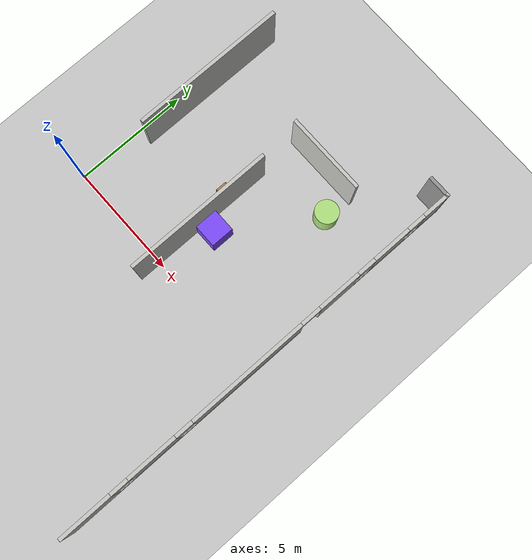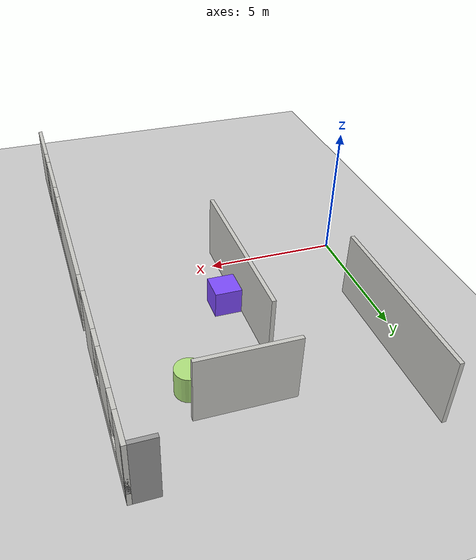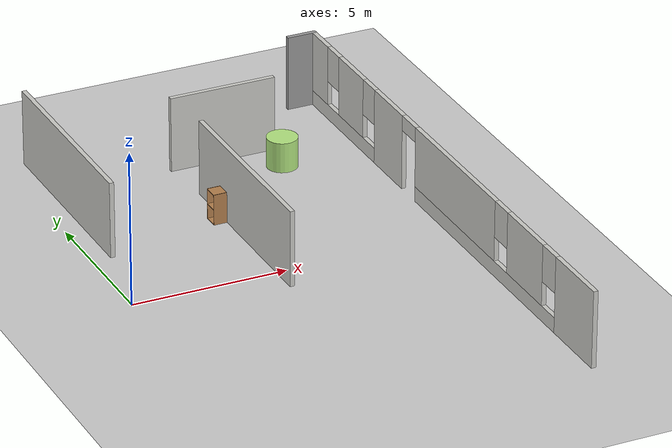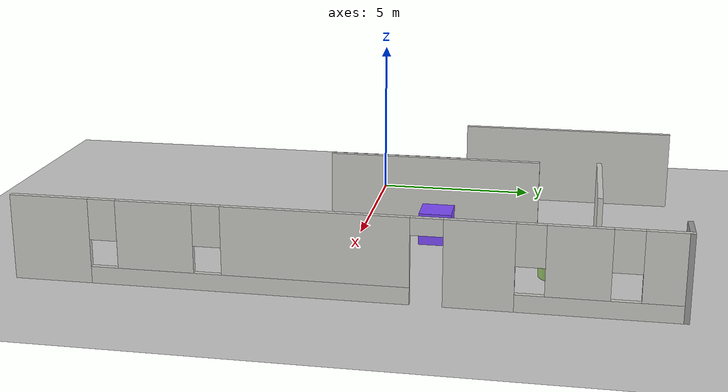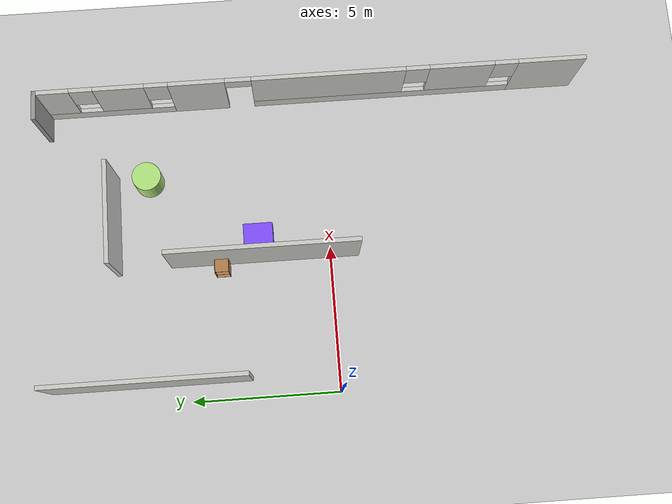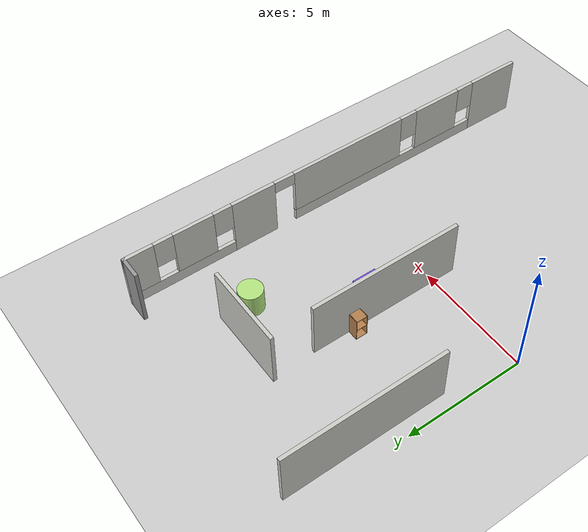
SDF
<sdf version="1.7">
 <world name="default">
  <model name="ground_plane">
   <static>1</static>
   <link name="link">
    <collision name="collision">
     <geometry><plane><normal>0 0 1</normal><size>100 100</size></plane></geometry>
     <surface><friction><ode><mu>100</mu><mu2>50</mu2></ode></friction></surface>
    </collision>
    <visual name="visual">
     <cast_shadows>0</cast_shadows>
     <geometry><plane><normal>0 0 1</normal><size>100 100</size></plane></geometry>
     <material>
      <script><uri>file://media/materials/scripts/gazebo.material</uri><name>Gazebo/Grey</name></script>
     </material>
    </visual>
   </link>
  </model>
  <model name="cabinet">
   <static>1</static>
   <link name="cabinet_bottom_plate">
    <inertial>
     <pose>0 0 -1 0 -0 0</pose>
     <inertia><ixx>2.05</ixx><ixy>0</ixy><ixz>0</ixz><iyy>2.05</iyy><iyz>0</iyz><izz>2.05</izz></inertia>
     <mass>25</mass>
    </inertial>
    <collision name="cabinet_bottom_plate_geom">
     <pose>0 0 0.01 0 -0 0</pose>
     <geometry><box><size>0.45 0.45 0.02</size></box></geometry>
    </collision>
    <visual name="cabinet_bottom_plate_geom_visual">
     <pose>0 0 0.01 0 -0 0</pose>
     <geometry><box><size>0.45 0.45 0.02</size></box></geometry>
     <material>
      <script><uri>file://media/materials/scripts/gazebo.material</uri><name>Gazebo/Wood</name></script>
     </material>
    </visual>
    <collision name="cabinet_bottom_plate_geom_cabinet_back_plate">
     <pose>0.235 0 0.51 0 -0 0</pose>
     <geometry><box><size>0.02 0.45 1.02</size></box></geometry>
    </collision>
    <visual name="cabinet_bottom_plate_geom_cabinet_back_plate_visual">
     <pose>0.235 0 0.51 0 -0 0</pose>
     <geometry><box><size>0.02 0.45 1.02</size></box></geometry>
     <material>
      <script><uri>file://media/materials/scripts/gazebo.material</uri><name>Gazebo/Wood</name></script>
     </material>
    </visual>
    <collision name="cabinet_bottom_plate_geom_cabinet_left_plate">
     <pose>0 0.235 0.51 0 -0 0</pose>
     <geometry><box><size>0.45 0.02 1.02</size></box></geometry>
    </collision>
    <visual name="cabinet_bottom_plate_geom_cabinet_left_plate_visual">
     <pose>0 0.235 0.51 0 -0 0</pose>
     <geometry><box><size>0.45 0.02 1.02</size></box></geometry>
     <material>
      <script><uri>file://media/materials/scripts/gazebo.material</uri><name>Gazebo/Wood</name></script>
     </material>
    </visual>
    <collision name="cabinet_bottom_plate_geom_cabinet_middle_plate">
     <pose>0 0 0.51 0 -0 0</pose>
     <geometry><box><size>0.45 0.45 0.02</size></box></geometry>
    </collision>
    <visual name="cabinet_bottom_plate_geom_cabinet_middle_plate_visual">
     <pose>0 0 0.51 0 -0 0</pose>
     <geometry><box><size>0.45 0.45 0.02</size></box></geometry>
     <material>
      <script><uri>file://media/materials/scripts/gazebo.material</uri><name>Gazebo/Wood</name></script>
     </material>
    </visual>
    <collision name="cabinet_bottom_plate_geom_cabinet_right_plate">
     <pose>0 -0.235 0.51 0 -0 0</pose>
     <geometry><box><size>0.45 0.02 1.02</size></box></geometry>
    </collision>
    <visual name="cabinet_bottom_plate_geom_cabinet_right_plate_visual">
     <pose>0 -0.235 0.51 0 -0 0</pose>
     <geometry><box><size>0.45 0.02 1.02</size></box></geometry>
     <material>
      <script><uri>file://media/materials/scripts/gazebo.material</uri><name>Gazebo/Wood</name></script>
     </material>
    </visual>
    <collision name="cabinet_bottom_plate_geom_cabinet_top_plate">
     <pose>0 0 1.01 0 -0 0</pose>
     <geometry><box><size>0.45 0.45 0.02</size></box></geometry>
    </collision>
    <visual name="cabinet_bottom_plate_geom_cabinet_top_plate_visual">
     <pose>0 0 1.01 0 -0 0</pose>
     <geometry><box><size>0.45 0.45 0.02</size></box></geometry>
     <material>
      <script><uri>file://media/materials/scripts/gazebo.material</uri><name>Gazebo/Wood</name></script>
     </material>
    </visual>
   </link>
   <pose>4.44424 3.74258 0 0 -0 0</pose>
  </model>
  <model name="unit_cylinder_33">
   <link name="link">
    <inertial>
     <mass>1</mass>
     <inertia><ixx>0.145833</ixx><ixy>0</ixy><ixz>0</ixz><iyy>0.145833</iyy><iyz>0</iyz><izz>0.125</izz></inertia>
    </inertial>
    <visual name="visual">
     <geometry><cylinder><radius>0.5</radius><length>1</length></cylinder></geometry>
     <material>
      <script><name>Gazebo/Grey</name><uri>file://media/materials/scripts/gazebo.material</uri></script>
      <shader type="pixel"><normal_map>__default__</normal_map></shader>
      <ambient>0.7 0.9 0.5 0</ambient>
      <diffuse>0.7 0.7 0.7 1</diffuse>
      <specular>0.01 0.01 0.01 1</specular>
      <emissive>0 0 0 1</emissive>
     </material>
    </visual>
    <collision name="collision">
     <geometry><cylinder><radius>0.5</radius><length>1</length></cylinder></geometry>
     <surface>
      <friction>
       <ode><mu>1</mu><mu2>1</mu2><fdir1>0 0 0</fdir1><slip1>0</slip1><slip2>0</slip2></ode>
       <torsional>
        <coefficient>1</coefficient>
        <patch_radius>0</patch_radius>
        <surface_radius>0</surface_radius>
        <use_patch_radius>1</use_patch_radius>
        <ode><slip>0</slip></ode>
       </torsional>
      </friction>
      <bounce><restitution_coefficient>0</restitution_coefficient><threshold>1e+06</threshold></bounce>
      <contact>
       <collide_without_contact>0</collide_without_contact>
       <collide_without_contact_bitmask>1</collide_without_contact_bitmask>
       <collide_bitmask>1</collide_bitmask>
       <ode>
        <soft_cfm>0</soft_cfm>
        <soft_erp>0.2</soft_erp>
        <kp>1e+13</kp>
        <kd>1</kd>
        <max_vel>0.01</max_vel>
        <min_depth>0</min_depth>
       </ode>
       <bullet>
        <split_impulse>1</split_impulse>
        <split_impulse_penetration_threshold>-0.01</split_impulse_penetration_threshold>
        <soft_cfm>0</soft_cfm>
        <soft_erp>0.2</soft_erp>
        <kp>1e+13</kp>
        <kd>1</kd>
       </bullet>
      </contact>
     </surface>
    </collision>
   </link>
   <static>0</static>
   <pose>7.74534 6.17381 0.499998 3e-06 1e-06 -0</pose>
  </model>
  <model name="unit_box12_0">
   <link name="link">
    <inertial>
     <mass>1</mass>
     <inertia>
      <ixx>0.166667</ixx>
      <ixy>0</ixy>
      <ixz>0</ixz>
      <iyy>0.166667</iyy>
      <iyz>0</iyz>
      <izz>0.166667</izz>
     </inertia>
    </inertial>
    <visual name="visual">
     <geometry><box><size>1 1 1</size></box></geometry>
     <material>
      <script><name>Gazebo/Grey</name><uri>file://media/materials/scripts/gazebo.material</uri></script>
      <shader type="pixel"><normal_map>__default__</normal_map></shader>
      <ambient>0.5 0.3 1 0</ambient>
      <diffuse>0.7 0.7 0.7 1</diffuse>
      <specular>0.01 0.01 0.01 1</specular>
      <emissive>0 0 0 1</emissive>
     </material>
    </visual>
    <collision name="collision">
     <geometry><box><size>1 1 1</size></box></geometry>
     <surface>
      <friction>
       <ode><mu>1</mu><mu2>1</mu2><fdir1>0 0 0</fdir1><slip1>0</slip1><slip2>0</slip2></ode>
       <torsional>
        <coefficient>1</coefficient>
        <patch_radius>0</patch_radius>
        <surface_radius>0</surface_radius>
        <use_patch_radius>1</use_patch_radius>
        <ode><slip>0</slip></ode>
       </torsional>
      </friction>
      <bounce><restitution_coefficient>0</restitution_coefficient><threshold>1e+06</threshold></bounce>
      <contact>
       <collide_without_contact>0</collide_without_contact>
       <collide_without_contact_bitmask>1</collide_without_contact_bitmask>
       <collide_bitmask>1</collide_bitmask>
       <ode>
        <soft_cfm>0</soft_cfm>
        <soft_erp>0.2</soft_erp>
        <kp>1e+13</kp>
        <kd>1</kd>
        <max_vel>0.01</max_vel>
        <min_depth>0</min_depth>
       </ode>
       <bullet>
        <split_impulse>1</split_impulse>
        <split_impulse_penetration_threshold>-0.01</split_impulse_penetration_threshold>
        <soft_cfm>0</soft_cfm>
        <soft_erp>0.2</soft_erp>
        <kp>1e+13</kp>
        <kd>1</kd>
       </bullet>
      </contact>
     </surface>
    </collision>
   </link>
   <static>0</static>
   <pose>5.32386 2.44658 0.5 0 -0 5e-06</pose>
  </model>
  <model name="training_area">
   <link name="Wall_28">
    <pose>0.758252 5.97196 0 0 0 -1.5708</pose>
    <inertial>
     <mass>1</mass>
     <inertia><ixx>1</ixx><ixy>0</ixy><ixz>0</ixz><iyy>1</iyy><iyz>0</iyz><izz>1</izz></inertia>
    </inertial>
    <visual name="Wall_28_Visual">
     <pose>0 0 1.25 0 -0 0</pose>
     <geometry><box><size>6.75 0.15 2.5</size></box></geometry>
     <material>
      <script><uri>file://media/materials/scripts/gazebo.material</uri><name>Gazebo/CeilingTiled</name></script>
      <ambient>0.135 0.396 0.9 1</ambient>
      <shader type="pixel"><normal_map>__default__</normal_map></shader>
      <diffuse>1 1 1 1</diffuse>
      <specular>0 0 0 1</specular>
      <emissive>0 0 0 1</emissive>
     </material>
     <meta><layer>0</layer></meta>
    </visual>
    <collision name="Wall_28_Collision">
     <pose>0 0 1.25 0 -0 0</pose>
     <geometry><box><size>6.75 0.15 2.5</size></box></geometry>
     <surface>
      <friction>
       <ode><mu>1</mu><mu2>1</mu2><fdir1>0 0 0</fdir1><slip1>0</slip1><slip2>0</slip2></ode>
       <torsional>
        <coefficient>1</coefficient>
        <patch_radius>0</patch_radius>
        <surface_radius>0</surface_radius>
        <use_patch_radius>1</use_patch_radius>
        <ode><slip>0</slip></ode>
       </torsional>
      </friction>
      <bounce><restitution_coefficient>0</restitution_coefficient><threshold>1e+06</threshold></bounce>
      <contact>
       <collide_without_contact>0</collide_without_contact>
       <collide_without_contact_bitmask>1</collide_without_contact_bitmask>
       <collide_bitmask>1</collide_bitmask>
       <ode>
        <soft_cfm>0</soft_cfm>
        <soft_erp>0.2</soft_erp>
        <kp>1e+13</kp>
        <kd>1</kd>
        <max_vel>0.01</max_vel>
        <min_depth>0</min_depth>
       </ode>
       <bullet>
        <split_impulse>1</split_impulse>
        <split_impulse_penetration_threshold>-0.01</split_impulse_penetration_threshold>
        <soft_cfm>0</soft_cfm>
        <soft_erp>0.2</soft_erp>
        <kp>1e+13</kp>
        <kd>1</kd>
       </bullet>
      </contact>
     </surface>
    </collision>
   </link>
   <link name="Wall_30">
    <pose>6.33904 6.99359 0 0 -0 0</pose>
    <visual name="Wall_30_Visual">
     <pose>0 0 1.25 0 -0 0</pose>
     <geometry><box><size>3.5 0.15 2.5</size></box></geometry>
     <material>
      <script><uri>file://media/materials/scripts/gazebo.material</uri><name>Gazebo/CeilingTiled</name></script>
      <ambient>0.435294 0.796078 0.67451 1</ambient>
      <shader type="pixel"/>
     </material>
     <meta><layer>0</layer></meta>
    </visual>
    <collision name="Wall_30_Collision">
     <pose>0 0 1.25 0 -0 0</pose>
     <geometry><box><size>3.5 0.15 2.5</size></box></geometry>
     <surface>
      <friction>
       <ode><mu>1</mu><mu2>1</mu2><fdir1>0 0 0</fdir1><slip1>0</slip1><slip2>0</slip2></ode>
       <torsional>
        <coefficient>1</coefficient>
        <patch_radius>0</patch_radius>
        <surface_radius>0</surface_radius>
        <use_patch_radius>1</use_patch_radius>
        <ode><slip>0</slip></ode>
       </torsional>
      </friction>
      <bounce><restitution_coefficient>0</restitution_coefficient><threshold>1e+06</threshold></bounce>
      <contact>
       <collide_without_contact>0</collide_without_contact>
       <collide_without_contact_bitmask>1</collide_without_contact_bitmask>
       <collide_bitmask>1</collide_bitmask>
       <ode>
        <soft_cfm>0</soft_cfm>
        <soft_erp>0.2</soft_erp>
        <kp>1e+13</kp>
        <kd>1</kd>
        <max_vel>0.01</max_vel>
        <min_depth>0</min_depth>
       </ode>
       <bullet>
        <split_impulse>1</split_impulse>
        <split_impulse_penetration_threshold>-0.01</split_impulse_penetration_threshold>
        <soft_cfm>0</soft_cfm>
        <soft_erp>0.2</soft_erp>
        <kp>1e+13</kp>
        <kd>1</kd>
       </bullet>
      </contact>
     </surface>
    </collision>
   </link>
   <link name="Wall_32">
    <pose>4.82678 1.94706 0 0 0 -1.5708</pose>
    <inertial>
     <mass>1</mass>
     <inertia><ixx>1</ixx><ixy>0</ixy><ixz>0</ixz><iyy>1</iyy><iyz>0</iyz><izz>1</izz></inertia>
    </inertial>
    <visual name="Wall_32_Visual">
     <pose>0 0 1.25 0 -0 0</pose>
     <geometry><box><size>6.5 0.15 2.5</size></box></geometry>
     <material>
      <script><uri>file://media/materials/scripts/gazebo.material</uri><name>Gazebo/CeilingTiled</name></script>
      <ambient>0.835 0.396 0.375 1</ambient>
      <shader type="pixel"><normal_map>__default__</normal_map></shader>
      <diffuse>1 1 1 1</diffuse>
      <specular>0 0 0 1</specular>
      <emissive>0 0 0 1</emissive>
     </material>
     <meta><layer>0</layer></meta>
    </visual>
    <collision name="Wall_32_Collision">
     <pose>0 0 1.25 0 -0 0</pose>
     <geometry><box><size>6.5 0.15 2.5</size></box></geometry>
     <surface>
      <friction>
       <ode><mu>1</mu><mu2>1</mu2><fdir1>0 0 0</fdir1><slip1>0</slip1><slip2>0</slip2></ode>
       <torsional>
        <coefficient>1</coefficient>
        <patch_radius>0</patch_radius>
        <surface_radius>0</surface_radius>
        <use_patch_radius>1</use_patch_radius>
        <ode><slip>0</slip></ode>
       </torsional>
      </friction>
      <bounce><restitution_coefficient>0</restitution_coefficient><threshold>1e+06</threshold></bounce>
      <contact>
       <collide_without_contact>0</collide_without_contact>
       <collide_without_contact_bitmask>1</collide_without_contact_bitmask>
       <collide_bitmask>1</collide_bitmask>
       <ode>
        <soft_cfm>0</soft_cfm>
        <soft_erp>0.2</soft_erp>
        <kp>1e+13</kp>
        <kd>1</kd>
        <max_vel>0.01</max_vel>
        <min_depth>0</min_depth>
       </ode>
       <bullet>
        <split_impulse>1</split_impulse>
        <split_impulse_penetration_threshold>-0.01</split_impulse_penetration_threshold>
        <soft_cfm>0</soft_cfm>
        <soft_erp>0.2</soft_erp>
        <kp>1e+13</kp>
        <kd>1</kd>
       </bullet>
      </contact>
     </surface>
    </collision>
   </link>
   <link name="Wall_7">
    <pose>10.555 0 0 0 -0 1.5708</pose>
    <inertial>
     <mass>1</mass>
     <inertia><ixx>1</ixx><ixy>0</ixy><ixz>0</ixz><iyy>1</iyy><iyz>0</iyz><izz>1</izz></inertia>
    </inertial>
    <visual name="Wall_7_Visual_2">
     <pose>-2.54492 0 0.25 0 -0 0</pose>
     <geometry><box><size>9.06351 0.15 0.5</size></box></geometry>
     <material>
      <script><uri>file://media/materials/scripts/gazebo.material</uri><name>Gazebo/CeilingTiled</name></script>
      <ambient>0.1 0.9 0.906 1</ambient>
      <shader type="pixel"><normal_map>__default__</normal_map></shader>
      <diffuse>1 1 1 1</diffuse>
      <specular>0 0 0 1</specular>
      <emissive>0 0 0 1</emissive>
     </material>
     <meta><layer>0</layer></meta>
    </visual>
    <visual name="Wall_7_Visual_12">
     <pose>7.72592 0 1.9 0 -0 0</pose>
     <geometry><box><size>0.8 0.15 1.2</size></box></geometry>
     <material>
      <script><uri>file://media/materials/scripts/gazebo.material</uri><name>Gazebo/CeilingTiled</name></script>
      <ambient>0.4 1 0.106 1</ambient>
      <shader type="pixel"><normal_map>__default__</normal_map></shader>
      <diffuse>1 1 1 1</diffuse>
      <specular>0 0 0 1</specular>
      <emissive>0 0 0 1</emissive>
     </material>
     <meta><layer>0</layer></meta>
    </visual>
    <visual name="Wall_7_Visual_11">
     <pose>-3.66596 0 1.9 0 -0 0</pose>
     <geometry><box><size>0.8 0.15 1.2</size></box></geometry>
     <material>
      <script><uri>file://media/materials/scripts/gazebo.material</uri><name>Gazebo/CeilingTiled</name></script>
      <ambient>0.5 0.465 0.106 1</ambient>
      <shader type="pixel"><normal_map>__default__</normal_map></shader>
      <diffuse>1 1 1 1</diffuse>
      <specular>0 0 0 1</specular>
      <emissive>0 0 0 1</emissive>
     </material>
     <meta><layer>0</layer></meta>
    </visual>
    <visual name="Wall_7_Visual_6">
     <pose>-0.639567 0 1.5 0 -0 0</pose>
     <geometry><box><size>5.2528 0.15 2</size></box></geometry>
     <material>
      <script><uri>file://media/materials/scripts/gazebo.material</uri><name>Gazebo/CeilingTiled</name></script>
      <ambient>0.2 0.765 0.206 1</ambient>
      <shader type="pixel"><normal_map>__default__</normal_map></shader>
      <diffuse>1 1 1 1</diffuse>
      <specular>0 0 0 1</specular>
      <emissive>0 0 0 1</emissive>
     </material>
     <meta><layer>0</layer></meta>
    </visual>
    <visual name="Wall_7_Visual_1">
     <pose>3.84513 0 1.25 0 -0 0</pose>
     <geometry><box><size>1.9166 0.15 2.5</size></box></geometry>
     <material>
      <script><uri>file://media/materials/scripts/gazebo.material</uri><name>Gazebo/CeilingTiled</name></script>
      <ambient>0.9 0.9 0.106 1</ambient>
      <shader type="pixel"><normal_map>__default__</normal_map></shader>
      <diffuse>1 1 1 1</diffuse>
      <specular>0 0 0 1</specular>
      <emissive>0 0 0 1</emissive>
     </material>
     <meta><layer>0</layer></meta>
    </visual>
    <visual name="Wall_7_Visual_14">
     <pose>2.43683 0 2.25 0 -0 0</pose>
     <geometry><box><size>0.9 0.15 0.5</size></box></geometry>
     <material>
      <script><uri>file://media/materials/scripts/gazebo.material</uri><name>Gazebo/CeilingTiled</name></script>
      <ambient>0.9 0.465 0.806 1</ambient>
      <shader type="pixel"><normal_map>__default__</normal_map></shader>
      <diffuse>1 1 1 1</diffuse>
      <specular>0 0 0 1</specular>
      <emissive>0 0 0 1</emissive>
     </material>
     <meta><layer>0</layer></meta>
    </visual>
    <visual name="Wall_7_Visual_8">
     <pose>8.75046 0 1.5 0 -0 0</pose>
     <geometry><box><size>1.24908 0.15 2</size></box></geometry>
     <material>
      <script><uri>file://media/materials/scripts/gazebo.material</uri><name>Gazebo/CeilingTiled</name></script>
      <ambient>0.6 1 0.606 1</ambient>
      <shader type="pixel"><normal_map>__default__</normal_map></shader>
      <diffuse>1 1 1 1</diffuse>
      <specular>0 0 0 1</specular>
      <emissive>0 0 0 1</emissive>
     </material>
     <meta><layer>0</layer></meta>
    </visual>
    <visual name="Wall_7_Visual_13">
     <pose>2.43683 0 2.25 0 -0 0</pose>
     <geometry><box><size>0.9 0.15 0.5</size></box></geometry>
     <material>
      <script><uri>file://media/materials/scripts/gazebo.material</uri><name>Gazebo/CeilingTiled</name></script>
      <ambient>0.7 0.965 0.706 1</ambient>
      <shader type="pixel"><normal_map>__default__</normal_map></shader>
      <diffuse>1 1 1 1</diffuse>
      <specular>0 0 0 1</specular>
      <emissive>0 0 0 1</emissive>
     </material>
     <meta><layer>0</layer></meta>
    </visual>
    <visual name="Wall_7_Visual_10">
     <pose>5.20343 0 1.9 0 -0 0</pose>
     <geometry><box><size>0.8 0.15 1.2</size></box></geometry>
     <material>
      <script><uri>file://media/materials/scripts/gazebo.material</uri><name>Gazebo/CeilingTiled</name></script>
      <ambient>0.6 0.265 0.806 1</ambient>
      <shader type="pixel"><normal_map>__default__</normal_map></shader>
      <diffuse>1 1 1 1</diffuse>
      <specular>0 0 0 1</specular>
      <emissive>0 0 0 1</emissive>
     </material>
     <meta><layer>0</layer></meta>
    </visual>
    <visual name="Wall_7_Visual_4">
     <pose>-5.17132 0 1.5 0 -0 0</pose>
     <geometry><box><size>2.21071 0.15 2</size></box></geometry>
     <material>
      <script><uri>file://media/materials/scripts/gazebo.material</uri><name>Gazebo/CeilingTiled</name></script>
      <ambient>0.5 0.765 0.706 1</ambient>
      <shader type="pixel"><normal_map>__default__</normal_map></shader>
      <diffuse>1 1 1 1</diffuse>
      <specular>0 0 0 1</specular>
      <emissive>0 0 0 1</emissive>
     </material>
     <meta><layer>0</layer></meta>
    </visual>
    <visual name="Wall_7_Visual_9">
     <pose>-6.67668 0 1.9 0 -0 0</pose>
     <geometry><box><size>0.8 0.15 1.2</size></box></geometry>
     <material>
      <script><uri>file://media/materials/scripts/gazebo.material</uri><name>Gazebo/CeilingTiled</name></script>
      <ambient>0.6 0.965 0.206 1</ambient>
      <shader type="pixel"><normal_map>__default__</normal_map></shader>
      <diffuse>1 1 1 1</diffuse>
      <specular>0 0 0 1</specular>
      <emissive>0 0 0 1</emissive>
     </material>
     <meta><layer>0</layer></meta>
    </visual>
    <visual name="Wall_7_Visual_7">
     <pose>6.46468 0 1.5 0 -0 0</pose>
     <geometry><box><size>1.72249 0.15 2</size></box></geometry>
     <material>
      <script><uri>file://media/materials/scripts/gazebo.material</uri><name>Gazebo/CeilingTiled</name></script>
      <ambient>0.8 0.3 0.306 1</ambient>
      <shader type="pixel"><normal_map>__default__</normal_map></shader>
      <diffuse>1 1 1 1</diffuse>
      <specular>0 0 0 1</specular>
      <emissive>0 0 0 1</emissive>
     </material>
     <meta><layer>0</layer></meta>
    </visual>
    <visual name="Wall_7_Visual_0">
     <pose>-8.22584 0 1.25 0 -0 0</pose>
     <geometry><box><size>2.29832 0.15 2.5</size></box></geometry>
     <material>
      <script><uri>file://media/materials/scripts/gazebo.material</uri><name>Gazebo/CeilingTiled</name></script>
      <ambient>0.9 0.1 0.9 1</ambient>
      <shader type="pixel"><normal_map>__default__</normal_map></shader>
      <diffuse>1 1 1 1</diffuse>
      <specular>0 0 0 1</specular>
      <emissive>0 0 0 1</emissive>
     </material>
     <meta><layer>0</layer></meta>
    </visual>
    <visual name="Wall_7_Visual_3">
     <pose>7.08922 0 0.25 0 -0 0</pose>
     <geometry><box><size>4.57157 0.15 0.5</size></box></geometry>
     <material>
      <script><uri>file://media/materials/scripts/gazebo.material</uri><name>Gazebo/CeilingTiled</name></script>
      <ambient>0.9 0.265 0.906 1</ambient>
      <shader type="pixel"><normal_map>__default__</normal_map></shader>
      <diffuse>1 1 1 1</diffuse>
      <specular>0 0 0 1</specular>
      <emissive>0 0 0 1</emissive>
     </material>
     <meta><layer>0</layer></meta>
    </visual>
    <visual name="Wall_7_Visual_5">
     <pose>-0.639567 0 1.5 0 -0 0</pose>
     <geometry><box><size>5.2528 0.15 2</size></box></geometry>
     <material>
      <script><uri>file://media/materials/scripts/gazebo.material</uri><name>Gazebo/CeilingTiled</name></script>
      <ambient>1 0.065 0.806 1</ambient>
      <shader type="pixel"><normal_map>__default__</normal_map></shader>
      <diffuse>1 1 1 1</diffuse>
      <specular>0 0 0 1</specular>
      <emissive>0 0 0 1</emissive>
     </material>
     <meta><layer>0</layer></meta>
    </visual>
    <collision name="Wall_7_Collision_6">
     <pose>-0.639567 0 1.5 0 -0 0</pose>
     <geometry><box><size>5.2528 0.15 2</size></box></geometry>
     <surface>
      <friction>
       <ode><mu>1</mu><mu2>1</mu2><fdir1>0 0 0</fdir1><slip1>0</slip1><slip2>0</slip2></ode>
       <torsional>
        <coefficient>1</coefficient>
        <patch_radius>0</patch_radius>
        <surface_radius>0</surface_radius>
        <use_patch_radius>1</use_patch_radius>
        <ode><slip>0</slip></ode>
       </torsional>
      </friction>
      <bounce><restitution_coefficient>0</restitution_coefficient><threshold>1e+06</threshold></bounce>
      <contact>
       <collide_without_contact>0</collide_without_contact>
       <collide_without_contact_bitmask>1</collide_without_contact_bitmask>
       <collide_bitmask>1</collide_bitmask>
       <ode>
        <soft_cfm>0</soft_cfm>
        <soft_erp>0.2</soft_erp>
        <kp>1e+13</kp>
        <kd>1</kd>
        <max_vel>0.01</max_vel>
        <min_depth>0</min_depth>
       </ode>
       <bullet>
        <split_impulse>1</split_impulse>
        <split_impulse_penetration_threshold>-0.01</split_impulse_penetration_threshold>
        <soft_cfm>0</soft_cfm>
        <soft_erp>0.2</soft_erp>
        <kp>1e+13</kp>
        <kd>1</kd>
       </bullet>
      </contact>
     </surface>
    </collision>
    <collision name="Wall_7_Collision_2">
     <pose>-2.54492 0 0.25 0 -0 0</pose>
     <geometry><box><size>9.06351 0.15 0.5</size></box></geometry>
     <surface>
      <friction>
       <ode><mu>1</mu><mu2>1</mu2><fdir1>0 0 0</fdir1><slip1>0</slip1><slip2>0</slip2></ode>
       <torsional>
        <coefficient>1</coefficient>
        <patch_radius>0</patch_radius>
        <surface_radius>0</surface_radius>
        <use_patch_radius>1</use_patch_radius>
        <ode><slip>0</slip></ode>
       </torsional>
      </friction>
      <bounce><restitution_coefficient>0</restitution_coefficient><threshold>1e+06</threshold></bounce>
      <contact>
       <collide_without_contact>0</collide_without_contact>
       <collide_without_contact_bitmask>1</collide_without_contact_bitmask>
       <collide_bitmask>1</collide_bitmask>
       <ode>
        <soft_cfm>0</soft_cfm>
        <soft_erp>0.2</soft_erp>
        <kp>1e+13</kp>
        <kd>1</kd>
        <max_vel>0.01</max_vel>
        <min_depth>0</min_depth>
       </ode>
       <bullet>
        <split_impulse>1</split_impulse>
        <split_impulse_penetration_threshold>-0.01</split_impulse_penetration_threshold>
        <soft_cfm>0</soft_cfm>
        <soft_erp>0.2</soft_erp>
        <kp>1e+13</kp>
        <kd>1</kd>
       </bullet>
      </contact>
     </surface>
    </collision>
    <collision name="Wall_7_Collision_7">
     <pose>6.46468 0 1.5 0 -0 0</pose>
     <geometry><box><size>1.72249 0.15 2</size></box></geometry>
     <surface>
      <friction>
       <ode><mu>1</mu><mu2>1</mu2><fdir1>0 0 0</fdir1><slip1>0</slip1><slip2>0</slip2></ode>
       <torsional>
        <coefficient>1</coefficient>
        <patch_radius>0</patch_radius>
        <surface_radius>0</surface_radius>
        <use_patch_radius>1</use_patch_radius>
        <ode><slip>0</slip></ode>
       </torsional>
      </friction>
      <bounce><restitution_coefficient>0</restitution_coefficient><threshold>1e+06</threshold></bounce>
      <contact>
       <collide_without_contact>0</collide_without_contact>
       <collide_without_contact_bitmask>1</collide_without_contact_bitmask>
       <collide_bitmask>1</collide_bitmask>
       <ode>
        <soft_cfm>0</soft_cfm>
        <soft_erp>0.2</soft_erp>
        <kp>1e+13</kp>
        <kd>1</kd>
        <max_vel>0.01</max_vel>
        <min_depth>0</min_depth>
       </ode>
       <bullet>
        <split_impulse>1</split_impulse>
        <split_impulse_penetration_threshold>-0.01</split_impulse_penetration_threshold>
        <soft_cfm>0</soft_cfm>
        <soft_erp>0.2</soft_erp>
        <kp>1e+13</kp>
        <kd>1</kd>
       </bullet>
      </contact>
     </surface>
    </collision>
    <collision name="Wall_7_Collision_3">
     <pose>7.08922 0 0.25 0 -0 0</pose>
     <geometry><box><size>4.57157 0.15 0.5</size></box></geometry>
     <surface>
      <friction>
       <ode><mu>1</mu><mu2>1</mu2><fdir1>0 0 0</fdir1><slip1>0</slip1><slip2>0</slip2></ode>
       <torsional>
        <coefficient>1</coefficient>
        <patch_radius>0</patch_radius>
        <surface_radius>0</surface_radius>
        <use_patch_radius>1</use_patch_radius>
        <ode><slip>0</slip></ode>
       </torsional>
      </friction>
      <bounce><restitution_coefficient>0</restitution_coefficient><threshold>1e+06</threshold></bounce>
      <contact>
       <collide_without_contact>0</collide_without_contact>
       <collide_without_contact_bitmask>1</collide_without_contact_bitmask>
       <collide_bitmask>1</collide_bitmask>
       <ode>
        <soft_cfm>0</soft_cfm>
        <soft_erp>0.2</soft_erp>
        <kp>1e+13</kp>
        <kd>1</kd>
        <max_vel>0.01</max_vel>
        <min_depth>0</min_depth>
       </ode>
       <bullet>
        <split_impulse>1</split_impulse>
        <split_impulse_penetration_threshold>-0.01</split_impulse_penetration_threshold>
        <soft_cfm>0</soft_cfm>
        <soft_erp>0.2</soft_erp>
        <kp>1e+13</kp>
        <kd>1</kd>
       </bullet>
      </contact>
     </surface>
    </collision>
    <collision name="Wall_7_Collision_5">
     <pose>-0.639567 0 1.5 0 -0 0</pose>
     <geometry><box><size>5.2528 0.15 2</size></box></geometry>
     <surface>
      <friction>
       <ode><mu>1</mu><mu2>1</mu2><fdir1>0 0 0</fdir1><slip1>0</slip1><slip2>0</slip2></ode>
       <torsional>
        <coefficient>1</coefficient>
        <patch_radius>0</patch_radius>
        <surface_radius>0</surface_radius>
        <use_patch_radius>1</use_patch_radius>
        <ode><slip>0</slip></ode>
       </torsional>
      </friction>
      <bounce><restitution_coefficient>0</restitution_coefficient><threshold>1e+06</threshold></bounce>
      <contact>
       <collide_without_contact>0</collide_without_contact>
       <collide_without_contact_bitmask>1</collide_without_contact_bitmask>
       <collide_bitmask>1</collide_bitmask>
       <ode>
        <soft_cfm>0</soft_cfm>
        <soft_erp>0.2</soft_erp>
        <kp>1e+13</kp>
        <kd>1</kd>
        <max_vel>0.01</max_vel>
        <min_depth>0</min_depth>
       </ode>
       <bullet>
        <split_impulse>1</split_impulse>
        <split_impulse_penetration_threshold>-0.01</split_impulse_penetration_threshold>
        <soft_cfm>0</soft_cfm>
        <soft_erp>0.2</soft_erp>
        <kp>1e+13</kp>
        <kd>1</kd>
       </bullet>
      </contact>
     </surface>
    </collision>
    <collision name="Wall_7_Collision_4">
     <pose>-5.17132 0 1.5 0 -0 0</pose>
     <geometry><box><size>2.21071 0.15 2</size></box></geometry>
     <surface>
      <friction>
       <ode><mu>1</mu><mu2>1</mu2><fdir1>0 0 0</fdir1><slip1>0</slip1><slip2>0</slip2></ode>
       <torsional>
        <coefficient>1</coefficient>
        <patch_radius>0</patch_radius>
        <surface_radius>0</surface_radius>
        <use_patch_radius>1</use_patch_radius>
        <ode><slip>0</slip></ode>
       </torsional>
      </friction>
      <bounce><restitution_coefficient>0</restitution_coefficient><threshold>1e+06</threshold></bounce>
      <contact>
       <collide_without_contact>0</collide_without_contact>
       <collide_without_contact_bitmask>1</collide_without_contact_bitmask>
       <collide_bitmask>1</collide_bitmask>
       <ode>
        <soft_cfm>0</soft_cfm>
        <soft_erp>0.2</soft_erp>
        <kp>1e+13</kp>
        <kd>1</kd>
        <max_vel>0.01</max_vel>
        <min_depth>0</min_depth>
       </ode>
       <bullet>
        <split_impulse>1</split_impulse>
        <split_impulse_penetration_threshold>-0.01</split_impulse_penetration_threshold>
        <soft_cfm>0</soft_cfm>
        <soft_erp>0.2</soft_erp>
        <kp>1e+13</kp>
        <kd>1</kd>
       </bullet>
      </contact>
     </surface>
    </collision>
    <collision name="Wall_7_Collision_12">
     <pose>7.72592 0 1.9 0 -0 0</pose>
     <geometry><box><size>0.8 0.15 1.2</size></box></geometry>
     <surface>
      <friction>
       <ode><mu>1</mu><mu2>1</mu2><fdir1>0 0 0</fdir1><slip1>0</slip1><slip2>0</slip2></ode>
       <torsional>
        <coefficient>1</coefficient>
        <patch_radius>0</patch_radius>
        <surface_radius>0</surface_radius>
        <use_patch_radius>1</use_patch_radius>
        <ode><slip>0</slip></ode>
       </torsional>
      </friction>
      <bounce><restitution_coefficient>0</restitution_coefficient><threshold>1e+06</threshold></bounce>
      <contact>
       <collide_without_contact>0</collide_without_contact>
       <collide_without_contact_bitmask>1</collide_without_contact_bitmask>
       <collide_bitmask>1</collide_bitmask>
       <ode>
        <soft_cfm>0</soft_cfm>
        <soft_erp>0.2</soft_erp>
        <kp>1e+13</kp>
        <kd>1</kd>
        <max_vel>0.01</max_vel>
        <min_depth>0</min_depth>
       </ode>
       <bullet>
        <split_impulse>1</split_impulse>
        <split_impulse_penetration_threshold>-0.01</split_impulse_penetration_threshold>
        <soft_cfm>0</soft_cfm>
        <soft_erp>0.2</soft_erp>
        <kp>1e+13</kp>
        <kd>1</kd>
       </bullet>
      </contact>
     </surface>
    </collision>
    <collision name="Wall_7_Collision_8">
     <pose>8.75046 0 1.5 0 -0 0</pose>
     <geometry><box><size>1.24908 0.15 2</size></box></geometry>
     <surface>
      <friction>
       <ode><mu>1</mu><mu2>1</mu2><fdir1>0 0 0</fdir1><slip1>0</slip1><slip2>0</slip2></ode>
       <torsional>
        <coefficient>1</coefficient>
        <patch_radius>0</patch_radius>
        <surface_radius>0</surface_radius>
        <use_patch_radius>1</use_patch_radius>
        <ode><slip>0</slip></ode>
       </torsional>
      </friction>
      <bounce><restitution_coefficient>0</restitution_coefficient><threshold>1e+06</threshold></bounce>
      <contact>
       <collide_without_contact>0</collide_without_contact>
       <collide_without_contact_bitmask>1</collide_without_contact_bitmask>
       <collide_bitmask>1</collide_bitmask>
       <ode>
        <soft_cfm>0</soft_cfm>
        <soft_erp>0.2</soft_erp>
        <kp>1e+13</kp>
        <kd>1</kd>
        <max_vel>0.01</max_vel>
        <min_depth>0</min_depth>
       </ode>
       <bullet>
        <split_impulse>1</split_impulse>
        <split_impulse_penetration_threshold>-0.01</split_impulse_penetration_threshold>
        <soft_cfm>0</soft_cfm>
        <soft_erp>0.2</soft_erp>
        <kp>1e+13</kp>
        <kd>1</kd>
       </bullet>
      </contact>
     </surface>
    </collision>
    <collision name="Wall_7_Collision_14">
     <pose>2.43683 0 2.25 0 -0 0</pose>
     <geometry><box><size>0.9 0.15 0.5</size></box></geometry>
     <surface>
      <friction>
       <ode><mu>1</mu><mu2>1</mu2><fdir1>0 0 0</fdir1><slip1>0</slip1><slip2>0</slip2></ode>
       <torsional>
        <coefficient>1</coefficient>
        <patch_radius>0</patch_radius>
        <surface_radius>0</surface_radius>
        <use_patch_radius>1</use_patch_radius>
        <ode><slip>0</slip></ode>
       </torsional>
      </friction>
      <bounce><restitution_coefficient>0</restitution_coefficient><threshold>1e+06</threshold></bounce>
      <contact>
       <collide_without_contact>0</collide_without_contact>
       <collide_without_contact_bitmask>1</collide_without_contact_bitmask>
       <collide_bitmask>1</collide_bitmask>
       <ode>
        <soft_cfm>0</soft_cfm>
        <soft_erp>0.2</soft_erp>
        <kp>1e+13</kp>
        <kd>1</kd>
        <max_vel>0.01</max_vel>
        <min_depth>0</min_depth>
       </ode>
       <bullet>
        <split_impulse>1</split_impulse>
        <split_impulse_penetration_threshold>-0.01</split_impulse_penetration_threshold>
        <soft_cfm>0</soft_cfm>
        <soft_erp>0.2</soft_erp>
        <kp>1e+13</kp>
        <kd>1</kd>
       </bullet>
      </contact>
     </surface>
    </collision>
    <collision name="Wall_7_Collision_9">
     <pose>-6.67668 0 1.9 0 -0 0</pose>
     <geometry><box><size>0.8 0.15 1.2</size></box></geometry>
     <surface>
      <friction>
       <ode><mu>1</mu><mu2>1</mu2><fdir1>0 0 0</fdir1><slip1>0</slip1><slip2>0</slip2></ode>
       <torsional>
        <coefficient>1</coefficient>
        <patch_radius>0</patch_radius>
        <surface_radius>0</surface_radius>
        <use_patch_radius>1</use_patch_radius>
        <ode><slip>0</slip></ode>
       </torsional>
      </friction>
      <bounce><restitution_coefficient>0</restitution_coefficient><threshold>1e+06</threshold></bounce>
      <contact>
       <collide_without_contact>0</collide_without_contact>
       <collide_without_contact_bitmask>1</collide_without_contact_bitmask>
       <collide_bitmask>1</collide_bitmask>
       <ode>
        <soft_cfm>0</soft_cfm>
        <soft_erp>0.2</soft_erp>
        <kp>1e+13</kp>
        <kd>1</kd>
        <max_vel>0.01</max_vel>
        <min_depth>0</min_depth>
       </ode>
       <bullet>
        <split_impulse>1</split_impulse>
        <split_impulse_penetration_threshold>-0.01</split_impulse_penetration_threshold>
        <soft_cfm>0</soft_cfm>
        <soft_erp>0.2</soft_erp>
        <kp>1e+13</kp>
        <kd>1</kd>
       </bullet>
      </contact>
     </surface>
    </collision>
    <collision name="Wall_7_Collision_1">
     <pose>3.84513 0 1.25 0 -0 0</pose>
     <geometry><box><size>1.9166 0.15 2.5</size></box></geometry>
     <surface>
      <friction>
       <ode><mu>1</mu><mu2>1</mu2><fdir1>0 0 0</fdir1><slip1>0</slip1><slip2>0</slip2></ode>
       <torsional>
        <coefficient>1</coefficient>
        <patch_radius>0</patch_radius>
        <surface_radius>0</surface_radius>
        <use_patch_radius>1</use_patch_radius>
        <ode><slip>0</slip></ode>
       </torsional>
      </friction>
      <bounce><restitution_coefficient>0</restitution_coefficient><threshold>1e+06</threshold></bounce>
      <contact>
       <collide_without_contact>0</collide_without_contact>
       <collide_without_contact_bitmask>1</collide_without_contact_bitmask>
       <collide_bitmask>1</collide_bitmask>
       <ode>
        <soft_cfm>0</soft_cfm>
        <soft_erp>0.2</soft_erp>
        <kp>1e+13</kp>
        <kd>1</kd>
        <max_vel>0.01</max_vel>
        <min_depth>0</min_depth>
       </ode>
       <bullet>
        <split_impulse>1</split_impulse>
        <split_impulse_penetration_threshold>-0.01</split_impulse_penetration_threshold>
        <soft_cfm>0</soft_cfm>
        <soft_erp>0.2</soft_erp>
        <kp>1e+13</kp>
        <kd>1</kd>
       </bullet>
      </contact>
     </surface>
    </collision>
    <collision name="Wall_7_Collision_11">
     <pose>-3.66596 0 1.9 0 -0 0</pose>
     <geometry><box><size>0.8 0.15 1.2</size></box></geometry>
     <surface>
      <friction>
       <ode><mu>1</mu><mu2>1</mu2><fdir1>0 0 0</fdir1><slip1>0</slip1><slip2>0</slip2></ode>
       <torsional>
        <coefficient>1</coefficient>
        <patch_radius>0</patch_radius>
        <surface_radius>0</surface_radius>
        <use_patch_radius>1</use_patch_radius>
        <ode><slip>0</slip></ode>
       </torsional>
      </friction>
      <bounce><restitution_coefficient>0</restitution_coefficient><threshold>1e+06</threshold></bounce>
      <contact>
       <collide_without_contact>0</collide_without_contact>
       <collide_without_contact_bitmask>1</collide_without_contact_bitmask>
       <collide_bitmask>1</collide_bitmask>
       <ode>
        <soft_cfm>0</soft_cfm>
        <soft_erp>0.2</soft_erp>
        <kp>1e+13</kp>
        <kd>1</kd>
        <max_vel>0.01</max_vel>
        <min_depth>0</min_depth>
       </ode>
       <bullet>
        <split_impulse>1</split_impulse>
        <split_impulse_penetration_threshold>-0.01</split_impulse_penetration_threshold>
        <soft_cfm>0</soft_cfm>
        <soft_erp>0.2</soft_erp>
        <kp>1e+13</kp>
        <kd>1</kd>
       </bullet>
      </contact>
     </surface>
    </collision>
    <collision name="Wall_7_Collision_0">
     <pose>-8.22584 0 1.25 0 -0 0</pose>
     <geometry><box><size>2.29832 0.15 2.5</size></box></geometry>
     <surface>
      <friction>
       <ode><mu>1</mu><mu2>1</mu2><fdir1>0 0 0</fdir1><slip1>0</slip1><slip2>0</slip2></ode>
       <torsional>
        <coefficient>1</coefficient>
        <patch_radius>0</patch_radius>
        <surface_radius>0</surface_radius>
        <use_patch_radius>1</use_patch_radius>
        <ode><slip>0</slip></ode>
       </torsional>
      </friction>
      <bounce><restitution_coefficient>0</restitution_coefficient><threshold>1e+06</threshold></bounce>
      <contact>
       <collide_without_contact>0</collide_without_contact>
       <collide_without_contact_bitmask>1</collide_without_contact_bitmask>
       <collide_bitmask>1</collide_bitmask>
       <ode>
        <soft_cfm>0</soft_cfm>
        <soft_erp>0.2</soft_erp>
        <kp>1e+13</kp>
        <kd>1</kd>
        <max_vel>0.01</max_vel>
        <min_depth>0</min_depth>
       </ode>
       <bullet>
        <split_impulse>1</split_impulse>
        <split_impulse_penetration_threshold>-0.01</split_impulse_penetration_threshold>
        <soft_cfm>0</soft_cfm>
        <soft_erp>0.2</soft_erp>
        <kp>1e+13</kp>
        <kd>1</kd>
       </bullet>
      </contact>
     </surface>
    </collision>
    <collision name="Wall_7_Collision_10">
     <pose>5.20343 0 1.9 0 -0 0</pose>
     <geometry><box><size>0.8 0.15 1.2</size></box></geometry>
     <surface>
      <friction>
       <ode><mu>1</mu><mu2>1</mu2><fdir1>0 0 0</fdir1><slip1>0</slip1><slip2>0</slip2></ode>
       <torsional>
        <coefficient>1</coefficient>
        <patch_radius>0</patch_radius>
        <surface_radius>0</surface_radius>
        <use_patch_radius>1</use_patch_radius>
        <ode><slip>0</slip></ode>
       </torsional>
      </friction>
      <bounce><restitution_coefficient>0</restitution_coefficient><threshold>1e+06</threshold></bounce>
      <contact>
       <collide_without_contact>0</collide_without_contact>
       <collide_without_contact_bitmask>1</collide_without_contact_bitmask>
       <collide_bitmask>1</collide_bitmask>
       <ode>
        <soft_cfm>0</soft_cfm>
        <soft_erp>0.2</soft_erp>
        <kp>1e+13</kp>
        <kd>1</kd>
        <max_vel>0.01</max_vel>
        <min_depth>0</min_depth>
       </ode>
       <bullet>
        <split_impulse>1</split_impulse>
        <split_impulse_penetration_threshold>-0.01</split_impulse_penetration_threshold>
        <soft_cfm>0</soft_cfm>
        <soft_erp>0.2</soft_erp>
        <kp>1e+13</kp>
        <kd>1</kd>
       </bullet>
      </contact>
     </surface>
    </collision>
    <collision name="Wall_7_Collision_13">
     <pose>2.43683 0 2.25 0 -0 0</pose>
     <geometry><box><size>0.9 0.15 0.5</size></box></geometry>
     <surface>
      <friction>
       <ode><mu>1</mu><mu2>1</mu2><fdir1>0 0 0</fdir1><slip1>0</slip1><slip2>0</slip2></ode>
       <torsional>
        <coefficient>1</coefficient>
        <patch_radius>0</patch_radius>
        <surface_radius>0</surface_radius>
        <use_patch_radius>1</use_patch_radius>
        <ode><slip>0</slip></ode>
       </torsional>
      </friction>
      <bounce><restitution_coefficient>0</restitution_coefficient><threshold>1e+06</threshold></bounce>
      <contact>
       <collide_without_contact>0</collide_without_contact>
       <collide_without_contact_bitmask>1</collide_without_contact_bitmask>
       <collide_bitmask>1</collide_bitmask>
       <ode>
        <soft_cfm>0</soft_cfm>
        <soft_erp>0.2</soft_erp>
        <kp>1e+13</kp>
        <kd>1</kd>
        <max_vel>0.01</max_vel>
        <min_depth>0</min_depth>
       </ode>
       <bullet>
        <split_impulse>1</split_impulse>
        <split_impulse_penetration_threshold>-0.01</split_impulse_penetration_threshold>
        <soft_cfm>0</soft_cfm>
        <soft_erp>0.2</soft_erp>
        <kp>1e+13</kp>
        <kd>1</kd>
       </bullet>
      </contact>
     </surface>
    </collision>
   </link>
   <link name="Wall_8">
    <pose>10.13 9.3 0 0 -0 3.14159</pose>
    <visual name="Wall_8_Visual">
     <pose>0 0 1.25 0 -0 0</pose>
     <geometry><box><size>1 0.15 2.5</size></box></geometry>
     <material>
      <script><uri>file://media/materials/scripts/gazebo.material</uri><name>Gazebo/Grey</name></script>
      <ambient>1 1 1 1</ambient>
      <shader type="pixel"/>
     </material>
     <meta><layer>0</layer></meta>
    </visual>
    <collision name="Wall_8_Collision">
     <pose>0 0 1.25 0 -0 0</pose>
     <geometry><box><size>1 0.15 2.5</size></box></geometry>
     <surface>
      <friction>
       <ode><mu>1</mu><mu2>1</mu2><fdir1>0 0 0</fdir1><slip1>0</slip1><slip2>0</slip2></ode>
       <torsional>
        <coefficient>1</coefficient>
        <patch_radius>0</patch_radius>
        <surface_radius>0</surface_radius>
        <use_patch_radius>1</use_patch_radius>
        <ode><slip>0</slip></ode>
       </torsional>
      </friction>
      <bounce><restitution_coefficient>0</restitution_coefficient><threshold>1e+06</threshold></bounce>
      <contact>
       <collide_without_contact>0</collide_without_contact>
       <collide_without_contact_bitmask>1</collide_without_contact_bitmask>
       <collide_bitmask>1</collide_bitmask>
       <ode>
        <soft_cfm>0</soft_cfm>
        <soft_erp>0.2</soft_erp>
        <kp>1e+13</kp>
        <kd>1</kd>
        <max_vel>0.01</max_vel>
        <min_depth>0</min_depth>
       </ode>
       <bullet>
        <split_impulse>1</split_impulse>
        <split_impulse_penetration_threshold>-0.01</split_impulse_penetration_threshold>
        <soft_cfm>0</soft_cfm>
        <soft_erp>0.2</soft_erp>
        <kp>1e+13</kp>
        <kd>1</kd>
       </bullet>
      </contact>
     </surface>
    </collision>
   </link>
   <static>1</static>
   <pose>-0.09596 0.33644 0 0 -0 0</pose>
  </model>
 </world>
</sdf>
